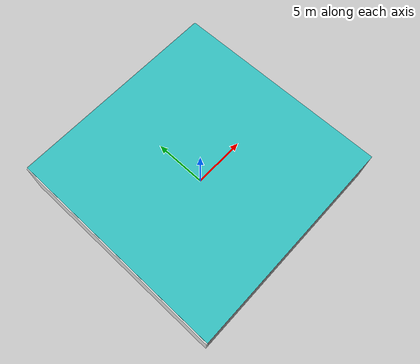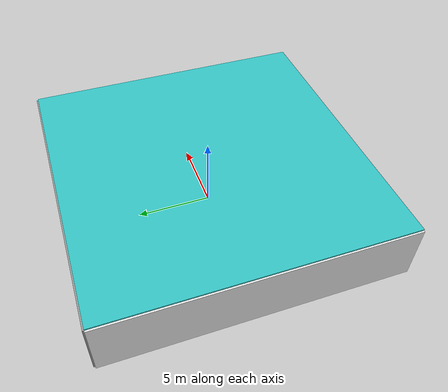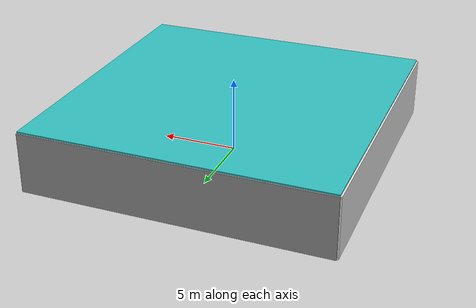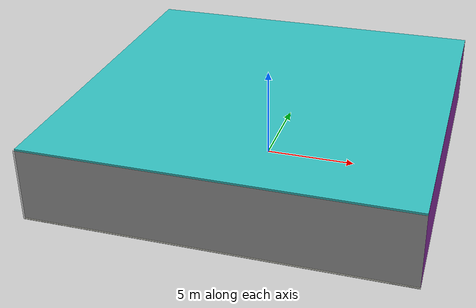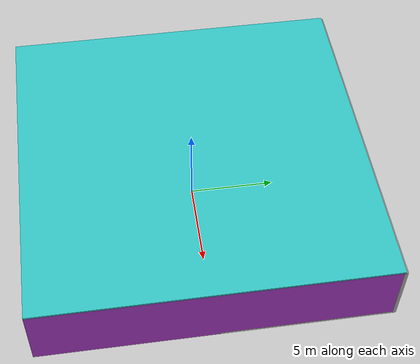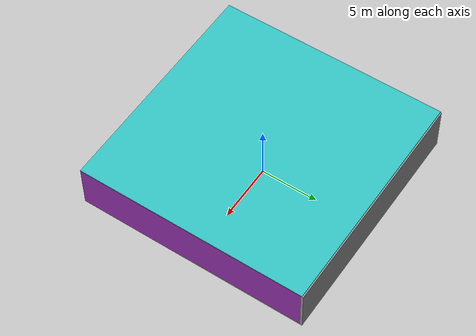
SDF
<sdf version="1.4">
 <world name="default">
  <physics type="ode">
   <max_step_size>0.001</max_step_size>
   <real_time_factor>1</real_time_factor>
   <real_time_update_rate>1000</real_time_update_rate>
   <gravity>0 0 -9.8</gravity>
  </physics>
  <scene><ambient>0.4 0.4 0.4 1</ambient><background>0.7 0.7 0.7 1</background><shadows>1</shadows></scene>
  <model name="Surrounding">
   <static>1</static>
   <link name="Ceiling">
    <collision name="Ceiling_Collision"><geometry><box><size>20 20 0.1</size></box></geometry></collision>
    <visual name="Ceiling_Visual">
     <geometry><box><size>20 20 0.1</size></box></geometry>
     <material>
      <script>
       <uri>file://media/materials/scripts/gazebo.material</uri>
       <name>Gazebo/TurquoiseGlowOutline</name>
      </script>
     </material>
    </visual>
    <pose>0 0 4.05 0 0 0</pose>
   </link>
   <link name="Wall_South">
    <collision name="Wall_South_Collision">
     <geometry><box><size>20 0 4</size></box></geometry>
     <pose>0 0 2 0 -0 0</pose>
    </collision>
    <visual name="Wall_South_Visual">
     <pose>0 0 2 0 -0 0</pose>
     <geometry><box><size>20 0 4</size></box></geometry>
     <material>
      <script><uri>file://media/materials/scripts/gazebo.material</uri><name>Gazebo/Grey</name></script>
     </material>
    </visual>
    <velocity_decay><linear>0</linear><angular>0</angular></velocity_decay>
    <pose>0 -10 0 0 -0 0</pose>
   </link>
   <link name="Wall_East">
    <collision name="Wall_21_Collision">
     <geometry><box><size>20 0 4</size></box></geometry>
     <pose>0 0 2 0 -0 0</pose>
    </collision>
    <visual name="Wall_21_Visual">
     <pose>0 0 2 0 -0 0</pose>
     <geometry><box><size>20 0 4</size></box></geometry>
     <material>
      <script><uri>file://media/materials/scripts/gazebo.material</uri><name>Gazebo/Purple</name></script>
     </material>
    </visual>
    <velocity_decay><linear>0</linear><angular>0</angular></velocity_decay>
    <pose>10 0 0 0 -0 1.5708</pose>
   </link>
   <link name="Wall_North">
    <collision name="Wall_22_Collision">
     <geometry><box><size>20 0.2 4</size></box></geometry>
     <pose>0 0 2 0 -0 0</pose>
    </collision>
    <visual name="Wall_22_Visual">
     <pose>0 0 2 0 -0 0</pose>
     <geometry><box><size>20 0.2 4</size></box></geometry>
     <material>
      <script><uri>file://media/materials/scripts/gazebo.material</uri><name>Gazebo/Grey</name></script>
     </material>
    </visual>
    <velocity_decay><linear>0</linear><angular>0</angular></velocity_decay>
    <pose>0 10 0 0 -0 0</pose>
   </link>
   <link name="Wall_West">
    <collision name="Wall_23_Collision">
     <geometry><box><size>20 0.2 4</size></box></geometry>
     <pose>0 0 2 0 -0 0</pose>
    </collision>
    <visual name="Wall_23_Visual">
     <pose>0 0 2 0 -0 0</pose>
     <geometry><box><size>20 0.2 4</size></box></geometry>
     <material>
      <script><uri>file://media/materials/scripts/gazebo.material</uri><name>Gazebo/White</name></script>
     </material>
    </visual>
    <velocity_decay><linear>0</linear><angular>0</angular></velocity_decay>
    <pose>-10 0 0 0 0 -1.5708</pose>
   </link>
   <link name="Ground_link">
    <collision name="collision">
     <pose>0 0 .05 0 -0 0</pose>
     <geometry><box><size>20 20 0.1</size></box></geometry>
    </collision>
    <visual name="visual">
     <pose>0 0 .05 0 -0 0</pose>
     <geometry><box><size>20 20 0.1</size></box></geometry>
     <material>
      <script><uri>file://media/materials/scripts/gazebo.material</uri><name>Gazebo/PaintedWall</name></script>
     </material>
    </visual>
   </link>
   <static>1</static>
  </model>
  <spherical_coordinates>
   <surface_model>EARTH_WGS84</surface_model>
   <latitude_deg>0</latitude_deg>
   <longitude_deg>0</longitude_deg>
   <elevation>0</elevation>
   <heading_deg>0</heading_deg>
  </spherical_coordinates>
  <light name="lightball_0" type="diffuse">
   <diffuse>0.8 0.8 0.8 1</diffuse>
   <specular>0.2 0.2 0.2 1</specular>
   <attenuation>
    <range>100</range>
    <constant>0.7</constant>
    <linear>0.01</linear>
    <quadratic>0.001</quadratic>
   </attenuation>
   <direction>-0.5 0.1 -0.9</direction>
   <pose>-0.481077828232 8.03600957215 2.70501448481 0 0 0</pose>
  </light>
  <light name="lightball_1" type="diffuse">
   <diffuse>0.8 0.8 0.8 1</diffuse>
   <specular>0.2 0.2 0.2 1</specular>
   <attenuation>
    <range>100</range>
    <constant>0.7</constant>
    <linear>0.01</linear>
    <quadratic>0.001</quadratic>
   </attenuation>
   <direction>-0.5 0.1 -0.9</direction>
   <pose>-7.69246462061 6.99190864334 2.37504421789 0 0 0</pose>
  </light>
  <light name="lightball_2" type="diffuse">
   <diffuse>0.8 0.8 0.8 1</diffuse>
   <specular>0.2 0.2 0.2 1</specular>
   <attenuation>
    <range>100</range>
    <constant>0.7</constant>
    <linear>0.01</linear>
    <quadratic>0.001</quadratic>
   </attenuation>
   <direction>-0.5 0.1 -0.9</direction>
   <pose>8.76808275615 5.77800543879 3.69082870288 0 0 0</pose>
  </light>
  <light name="lightball_3" type="diffuse">
   <diffuse>0.8 0.8 0.8 1</diffuse>
   <specular>0.2 0.2 0.2 1</specular>
   <attenuation>
    <range>100</range>
    <constant>0.7</constant>
    <linear>0.01</linear>
    <quadratic>0.001</quadratic>
   </attenuation>
   <direction>-0.5 0.1 -0.9</direction>
   <pose>7.64622292345 8.03326123396 1.24395982907 0 0 0</pose>
  </light>
  <light name="lightball_4" type="diffuse">
   <diffuse>0.8 0.8 0.8 1</diffuse>
   <specular>0.2 0.2 0.2 1</specular>
   <attenuation>
    <range>100</range>
    <constant>0.7</constant>
    <linear>0.01</linear>
    <quadratic>0.001</quadratic>
   </attenuation>
   <direction>-0.5 0.1 -0.9</direction>
   <pose>6.24671491503 4.93088680175 2.36260289352 0 0 0</pose>
  </light>
  <light name="lightball_5" type="diffuse">
   <diffuse>0.8 0.8 0.8 1</diffuse>
   <specular>0.2 0.2 0.2 1</specular>
   <attenuation>
    <range>100</range>
    <constant>0.7</constant>
    <linear>0.01</linear>
    <quadratic>0.001</quadratic>
   </attenuation>
   <direction>-0.5 0.1 -0.9</direction>
   <pose>-3.01938954846 -7.83151201161 0.896584263813 0 0 0</pose>
  </light>
  <light name="lightball_6" type="diffuse">
   <diffuse>0.8 0.8 0.8 1</diffuse>
   <specular>0.2 0.2 0.2 1</specular>
   <attenuation>
    <range>100</range>
    <constant>0.7</constant>
    <linear>0.01</linear>
    <quadratic>0.001</quadratic>
   </attenuation>
   <direction>-0.5 0.1 -0.9</direction>
   <pose>8.97473615358 -7.44016321985 1.99922355901 0 0 0</pose>
  </light>
  <include><uri>model://cabinet</uri><pose>-7.38451896599 -6.80080247962 0 0 0 0.985118451396</pose></include>
  <include><uri>model://table</uri><pose>-1.50853277006 -7.0988459233 0 0 0 0.581468987789</pose></include>
  <include><uri>model://cabinet</uri><pose>1.95443364574 1.87498323761 0 0 0 1.39836829868</pose></include>
  <include>
   <uri>model://construction_cone</uri>
   <pose>4.49361634626 -7.31992272299 0 0 0 1.62993021971</pose>
  </include>
  <include>
   <uri>model://textured_shapes</uri>
   <pose>4.99845267506 1.61826639031 0 0 0 2.64061544016</pose>
  </include>
  <include><uri>model://table</uri><pose>4.65702096371 5.21010024416 0 0 0 0.191502781421</pose></include>
  <include>
   <uri>model://construction_cone</uri>
   <pose>7.43913321444 -8.02140470657 0 0 0 1.91627790185</pose>
  </include>
  <include>
   <uri>model://construction_cone</uri>
   <pose>8.16652562273 -1.70094341052 0 0 0 0.418212390268</pose>
  </include>
 </world>
</sdf>

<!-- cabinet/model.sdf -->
<sdf version="1.5">
  <model name="cabinet">
    <static>true</static>
    <link name="cabinet_bottom_plate">
      <inertial>
        <pose>0 0 -1 0 0 0</pose>
        <inertia>
          <ixx>2.050000</ixx>
          <ixy>0</ixy>
          <ixz>0</ixz>
          <iyy>2.050000</iyy>
          <iyz>0</iyz>
          <izz>2.050000</izz>
        </inertia>
        <mass>25.000000</mass>
      </inertial>
      <collision name="cabinet_bottom_plate_geom">
        <pose>0 0 0.010000 0 0 0</pose>
        <geometry>
          <box>
            <size>0.450000 0.450000 0.020000</size>
          </box>
        </geometry>
      </collision>
      <visual name="cabinet_bottom_plate_geom_visual">
        <pose>0 0 0.010000 0 0 0</pose>
        <geometry>
          <box>
            <size>0.450000 0.450000 0.020000</size>
          </box>
        </geometry>
        <material>
          <script>
            <uri>model://media/materials/scripts/gazebo.material</uri>
            <name>Gazebo/Wood</name>
          </script>
        </material>
      </visual>
      <collision name="cabinet_bottom_plate_geom_cabinet_back_plate">
        <pose>0.235000 0 0.510000 0 0 0</pose>
        <geometry>
          <box>
            <size>0.020000 0.450000 1.020000</size>
          </box>
        </geometry>
      </collision>
      <visual name="cabinet_bottom_plate_geom_cabinet_back_plate_visual">
        <pose>0.235000 0 0.510000 0 0 0</pose>
        <geometry>
          <box>
            <size>0.020000 0.450000 1.020000</size>
          </box>
        </geometry>
        <material>
          <script>
            <uri>model://media/materials/scripts/gazebo.material</uri>
            <name>Gazebo/Wood</name>
          </script>
        </material>
      </visual>
      <collision name="cabinet_bottom_plate_geom_cabinet_left_plate">
        <pose>0 0.235000 0.510000 0 0 0</pose>
        <geometry>
          <box>
            <size>0.450000 0.020000 1.020000</size>
          </box>
        </geometry>
      </collision>
      <visual name="cabinet_bottom_plate_geom_cabinet_left_plate_visual">
        <pose>0 0.235000 0.510000 0 0 0</pose>
        <geometry>
          <box>
            <size>0.450000 0.020000 1.020000</size>
          </box>
        </geometry>
        <material>
          <script>
            <uri>model://media/materials/scripts/gazebo.material</uri>
            <name>Gazebo/Wood</name>
          </script>
        </material>
      </visual>
      <collision name="cabinet_bottom_plate_geom_cabinet_middle_plate">
        <pose>0 0 0.510000 0 0 0</pose>
        <geometry>
          <box>
            <size>0.450000 0.450000 0.020000</size>
          </box>
        </geometry>
      </collision>
      <visual name="cabinet_bottom_plate_geom_cabinet_middle_plate_visual">
        <pose>0 0 0.510000 0 0 0</pose>
        <geometry>
          <box>
            <size>0.450000 0.450000 0.020000</size>
          </box>
        </geometry>
        <material>
          <script>
            <uri>model://media/materials/scripts/gazebo.material</uri>
            <name>Gazebo/Wood</name>
          </script>
        </material>
      </visual>
      <collision name="cabinet_bottom_plate_geom_cabinet_right_plate">
        <pose>0 -0.235000 0.510000 0 0 0</pose>
        <geometry>
          <box>
            <size>0.450000 0.020000 1.020000</size>
          </box>
        </geometry>
      </collision>
      <visual name="cabinet_bottom_plate_geom_cabinet_right_plate_visual">
        <pose>0 -0.235000 0.510000 0 0 0</pose>
        <geometry>
          <box>
            <size>0.450000 0.020000 1.020000</size>
          </box>
        </geometry>
        <material>
          <script>
            <uri>model://media/materials/scripts/gazebo.material</uri>
            <name>Gazebo/Wood</name>
          </script>
        </material>
      </visual>
      <collision name="cabinet_bottom_plate_geom_cabinet_top_plate">
        <pose>0 0 1.010000 0 0 0</pose>
        <geometry>
          <box>
            <size>0.450000 0.450000 0.020000</size>
          </box>
        </geometry>
      </collision>
      <visual name="cabinet_bottom_plate_geom_cabinet_top_plate_visual">
        <pose>0 0 1.010000 0 0 0</pose>
        <geometry>
          <box>
            <size>0.450000 0.450000 0.020000</size>
          </box>
        </geometry>
        <material>
          <script>
            <uri>model://media/materials/scripts/gazebo.material</uri>
            <name>Gazebo/Wood</name>
          </script>
        </material>
      </visual>
    </link>
  </model>
</sdf>

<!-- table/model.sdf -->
<sdf version="1.5">
  <model name="table">
    <static>true</static>
    <link name="link">
      <collision name="surface">
        <pose>0 0 1.0 0 0 0</pose>
        <geometry>
          <box>
            <size>1.5 0.8 0.03</size>
          </box>
        </geometry>
        <surface>
          <friction>
            <ode>
              <mu>0.6</mu>
              <mu2>0.6</mu2>
            </ode>
          </friction>
        </surface>
      </collision>
      <visual name="visual1">
        <pose>0 0 1.0 0 0 0</pose>
        <geometry>
          <box>
            <size>1.5 0.8 0.03</size>
          </box>
        </geometry>
        <material>
          <script>
            <uri>model://media/materials/scripts/gazebo.material</uri>
            <name>Gazebo/Wood</name>
          </script>
        </material>
      </visual>
      <collision name="front_left_leg">
        <pose>0.68 0.38 0.5 0 0 0</pose>
        <geometry>
          <cylinder>
            <radius>0.02</radius>
            <length>1.0</length>
          </cylinder>
        </geometry>
      </collision>
      <visual name="front_left_leg">
        <pose>0.68 0.38 0.5 0 0 0</pose>
        <geometry>
          <cylinder>
            <radius>0.02</radius>
            <length>1.0</length>
          </cylinder>
        </geometry>
        <material>
          <script>
            <uri>model://media/materials/scripts/gazebo.material</uri>
            <name>Gazebo/Grey</name>
          </script>
        </material>
      </visual>
      <collision name="front_right_leg">
        <pose>0.68 -0.38 0.5 0 0 0</pose>
        <geometry>
          <cylinder>
            <radius>0.02</radius>
            <length>1.0</length>
          </cylinder>
        </geometry>
      </collision>
      <visual name="front_right_leg">
        <pose>0.68 -0.38 0.5 0 0 0</pose>
        <geometry>
          <cylinder>
            <radius>0.02</radius>
            <length>1.0</length>
          </cylinder>
        </geometry>
        <material>
          <script>
            <uri>model://media/materials/scripts/gazebo.material</uri>
            <name>Gazebo/Grey</name>
          </script>
        </material>
      </visual>
      <collision name="back_right_leg">
        <pose>-0.68 -0.38 0.5 0 0 0</pose>
        <geometry>
          <cylinder>
            <radius>0.02</radius>
            <length>1.0</length>
          </cylinder>
        </geometry>
      </collision>
      <visual name="back_right_leg">
        <pose>-0.68 -0.38 0.5 0 0 0</pose>
        <geometry>
          <cylinder>
            <radius>0.02</radius>
            <length>1.0</length>
          </cylinder>
        </geometry>
        <material>
          <script>
            <uri>model://media/materials/scripts/gazebo.material</uri>
            <name>Gazebo/Grey</name>
          </script>
        </material>
      </visual>
      <collision name="back_left_leg">
        <pose>-0.68 0.38 0.5 0 0 0</pose>
        <geometry>
          <cylinder>
            <radius>0.02</radius>
            <length>1.0</length>
          </cylinder>
        </geometry>
      </collision>
      <visual name="back_left_leg">
        <pose>-0.68 0.38 0.5 0 0 0</pose>
        <geometry>
          <cylinder>
            <radius>0.02</radius>
            <length>1.0</length>
          </cylinder>
        </geometry>
        <material>
          <script>
            <uri>model://media/materials/scripts/gazebo.material</uri>
            <name>Gazebo/Grey</name>
          </script>
        </material>
      </visual>
    </link>
  </model>
</sdf>

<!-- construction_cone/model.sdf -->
<sdf version="1.5">
  <model name="Construction Cone">
    <link name="link">
      <collision name="collision">
        <geometry>
          <mesh>
            <scale>10 10 10</scale>
            <uri>file://isr-testbed/construction_cone/meshes/construction_cone.dae</uri>
          </mesh>
        </geometry>
      </collision>
      <visual name="visual">
        <geometry>
          <mesh>
            <scale>10 10 10</scale>
            <uri>file://isr-testbed/construction_cone/meshes/construction_cone.dae</uri>
          </mesh>
        </geometry>
      </visual>
    </link>
  </model>
</sdf>

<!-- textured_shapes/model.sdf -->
<sdf version="1.6">
  <model name="textured_shapes">
    <pose>0 0 0.5 0 0 0</pose>
    <link name="box">
      <pose>0 -1.5 0 0 0 0</pose>
      <collision name="collision">
        <geometry>
          <box>
            <size>1 1 1</size>
          </box>
        </geometry>
      </collision>
      <visual name="visual">
        <geometry>
          <box>
            <size>1 1 1</size>
          </box>
        </geometry>
        <material>
          <script>
            <uri>model://../model_source/models/textured_shapes/materials/scripts</uri>
            <uri>model://../model_source/models/textured_shapes/materials/textures</uri>
            <name>TexturedShape/Squares</name>
          </script>
        </material>
      </visual>
    </link>
    <link name="sphere">
      <collision name="collision">
        <geometry>
          <sphere>
            <radius>0.5</radius>
          </sphere>
        </geometry>
      </collision>
      <visual name="visual">
        <geometry>
          <sphere>
            <radius>0.5</radius>
          </sphere>
        </geometry>
        <material>
          <script>
            <uri>model://../model_source/models/textured_shapes/materials/scripts</uri>
            <uri>model://../model_source/models/textured_shapes/materials/textures</uri>
            <name>TexturedShape/Squares</name>
          </script>
        </material>
      </visual>
    </link>
    <link name="cylinder">
      <pose>0 1.5 0 0 0 0</pose>
      <collision name="collision">
        <geometry>
          <cylinder>
            <radius>0.5</radius>
            <length>1</length>
          </cylinder>
        </geometry>
      </collision>
      <visual name="visual">
        <geometry>
          <cylinder>
            <radius>0.5</radius>
            <length>1</length>
          </cylinder>
        </geometry>
        <material>
          <script>
            <uri>model://../model_source/models/textured_shapes/materials/scripts</uri>
            <uri>model://../model_source/models/textured_shapes/materials/textures</uri>
            <name>TexturedShape/Squares</name>
          </script>
        </material>
      </visual>
    </link>
  </model>
</sdf>
